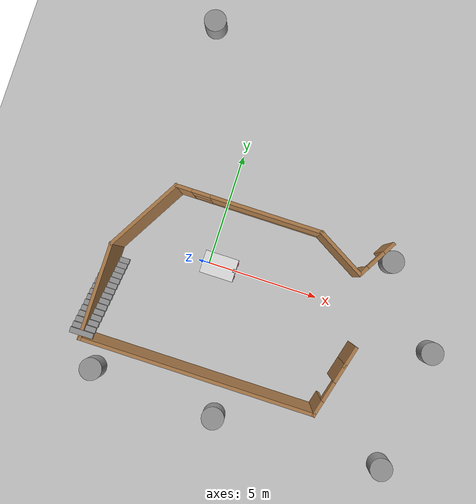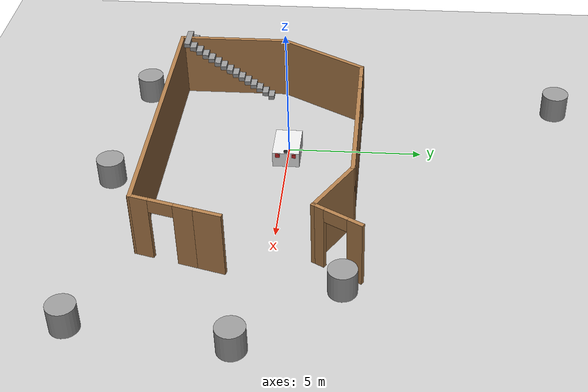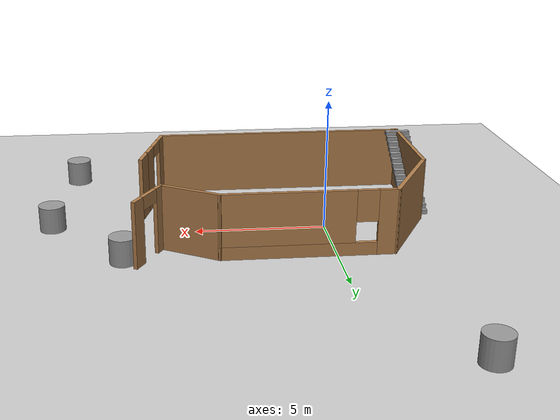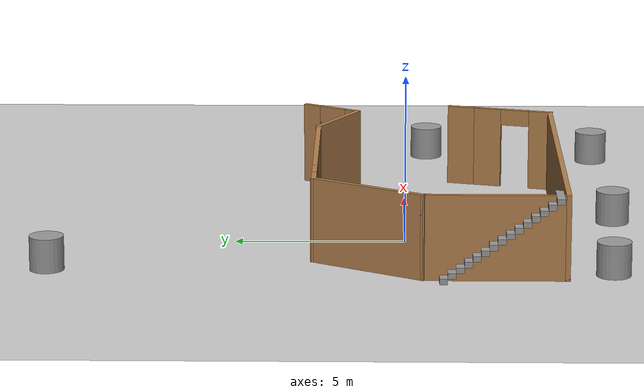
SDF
<sdf version="1.7">
 <world name="default">
  <light name="sun" type="directional">
   <pose>0 0 10 0 -0 0</pose>
   <diffuse>0.8 0.8 0.8 1</diffuse>
   <specular>0.2 0.2 0.2 1</specular>
   <attenuation>
    <range>1000</range>
    <constant>0.9</constant>
    <linear>0.01</linear>
    <quadratic>0.001</quadratic>
   </attenuation>
   <direction>-0.5 0.1 -0.9</direction>
   <spot><inner_angle>0</inner_angle><outer_angle>0</outer_angle><falloff>0</falloff></spot>
  </light>
  <model name="ground_plane">
   <static>1</static>
   <link name="link">
    <collision name="collision">
     <geometry><plane><normal>0 0 1</normal><size>100 100</size></plane></geometry>
     <surface><friction><ode><mu>100</mu><mu2>50</mu2></ode></friction></surface>
    </collision>
    <visual name="visual">
     <cast_shadows>0</cast_shadows>
     <geometry><plane><normal>0 0 1</normal><size>100 100</size></plane></geometry>
     <material>
      <script><uri>file://media/materials/scripts/gazebo.material</uri><name>Gazebo/Grey</name></script>
     </material>
    </visual>
   </link>
  </model>
  <gravity>0 0 -9.8</gravity>
  <magnetic_field>6e-06 2.3e-05 -4.2e-05</magnetic_field>
  <atmosphere type="adiabatic"/>
  <physics type="ode">
   <max_step_size>0.001</max_step_size>
   <real_time_factor>1</real_time_factor>
   <real_time_update_rate>1000</real_time_update_rate>
  </physics>
  <scene><ambient>0.4 0.4 0.4 1</ambient><background>0.7 0.7 0.7 1</background><shadows>1</shadows></scene>
  <audio><device>default</device></audio>
  <spherical_coordinates>
   <surface_model>EARTH_WGS84</surface_model>
   <latitude_deg>0</latitude_deg>
   <longitude_deg>0</longitude_deg>
   <elevation>0</elevation>
   <heading_deg>0</heading_deg>
  </spherical_coordinates>
  <model name="my_bot">
   <link name="base_link">
    <inertial>
     <pose>0.070173 0 0.029826 0 -0 0</pose>
     <mass>75.1</mass>
     <inertia>
      <ixx>0.903352</ixx>
      <ixy>0</ixy>
      <ixz>0.826016</ixz>
      <iyy>2.4414</iyy>
      <iyz>0</iyz>
      <izz>1.94739</izz>
     </inertia>
    </inertial>
    <collision name="base_link_fixed_joint_lump__chassis_collision">
     <pose>0.035 0 0.052885 0 -0 0</pose>
     <geometry><box><size>1.5 1 0.6</size></box></geometry>
    </collision>
    <collision name="base_link_fixed_joint_lump__caster_wheel_left_collision_1">
     <pose>0.55 0 -0.3 0 -0 0</pose>
     <geometry><sphere><radius>0.1</radius></sphere></geometry>
     <surface><friction><ode><mu>0.01</mu><mu2>0.01</mu2></ode></friction></surface>
    </collision>
    <collision name="base_link_fixed_joint_lump__laser_frame_collision_2">
     <pose>0.7 0 0.38 0 -0 0</pose>
     <geometry><cylinder><length>0.04</length><radius>0.035</radius></cylinder></geometry>
    </collision>
    <visual name="base_link_fixed_joint_lump__chassis_visual">
     <pose>0.035 0 0.052885 0 -0 0</pose>
     <geometry><box><size>1.5 1 0.6</size></box></geometry>
     <material>
      <script><name>Gazebo/white</name><uri>file://media/materials/scripts/gazebo.material</uri></script>
     </material>
    </visual>
    <visual name="base_link_fixed_joint_lump__camera_link_visual_1">
     <pose>0.8 0.3 0.25 0 -0 0</pose>
     <geometry><box><size>0.05 0.15 0.15</size></box></geometry>
     <material>
      <script><name>Gazebo/Red</name><uri>file://media/materials/scripts/gazebo.material</uri></script>
     </material>
    </visual>
    <visual name="base_link_fixed_joint_lump__camera_link2_visual_2">
     <pose>0.8 -0.3 0.25 0 -0 0</pose>
     <geometry><box><size>0.05 0.15 0.15</size></box></geometry>
     <material>
      <script><name>Gazebo/Red</name><uri>file://media/materials/scripts/gazebo.material</uri></script>
     </material>
    </visual>
    <visual name="base_link_fixed_joint_lump__caster_wheel_left_visual_3">
     <pose>0.55 0 -0.3 0 -0 0</pose>
     <geometry><sphere><radius>0.1</radius></sphere></geometry>
     <material>
      <script><name>Gazebo/Black</name><uri>file://media/materials/scripts/gazebo.material</uri></script>
     </material>
    </visual>
    <visual name="base_link_fixed_joint_lump__laser_frame_visual_4">
     <pose>0.7 0 0.38 0 -0 0</pose>
     <geometry><cylinder><length>0.04</length><radius>0.075</radius></cylinder></geometry>
     <material>
      <script><name>Gazebo/Black</name><uri>file://media/materials/scripts/gazebo.material</uri></script>
     </material>
    </visual>
    <sensor name="camera" type="depth">
     <visualize>1</visualize>
     <update_rate>10</update_rate>
     <camera>
      <horizontal_fov>1.089</horizontal_fov>
      <image><format>B8G8R8</format><width>640</width><height>480</height></image>
      <clip><near>0.1</near><far>100</far></clip>
     </camera>
     <plugin name="camera_controller" filename="libgazebo_ros_camera.so">
      <frame_name>camera_link_optical</frame_name>
      <min_depth>0.1</min_depth>
      <max_depth>100.0</max_depth>
     </plugin>
     <pose>0.8 0.3 0.25 0 -0 0</pose>
    </sensor>
    <sensor name="camera2" type="depth">
     <visualize>1</visualize>
     <update_rate>10</update_rate>
     <camera>
      <horizontal_fov>1.089</horizontal_fov>
      <image><format>B8G8R8</format><width>640</width><height>480</height></image>
      <clip><near>0.1</near><far>100</far></clip>
     </camera>
     <plugin name="camera_controller2" filename="libgazebo_ros_camera.so">
      <frame_name>camera_link_optical2</frame_name>
      <min_depth>0.1</min_depth>
      <max_depth>100.0</max_depth>
     </plugin>
     <pose>0.8 -0.3 0.25 0 -0 0</pose>
    </sensor>
    <sensor name="laser" type="ray">
     <visualize>1</visualize>
     <update_rate>10</update_rate>
     <ray>
      <scan>
       <horizontal>
        <samples>360</samples>
        <min_angle>-3.14</min_angle>
        <max_angle>3.14</max_angle>
        <resolution>1</resolution>
       </horizontal>
       <vertical><samples>1</samples><min_angle>0</min_angle><max_angle>0</max_angle></vertical>
      </scan>
      <range><min>0.3</min><max>12</max></range>
     </ray>
     <plugin name="laser_controller" filename="libgazebo_ros_ray_sensor.so">
      <ros><argument>~/out:=scan</argument></ros>
      <output_type>sensor_msgs/LaserScan</output_type>
      <frame_name>laser_frame</frame_name>
     </plugin>
     <pose>0.7 0 0.38 0 -0 0</pose>
    </sensor>
   </link>
   <joint name="left_wheel_joint" type="revolute">
    <pose relative_to="base_link">-0.5 0.4 -0.25 -1.5708 0 0</pose>
    <parent>base_link</parent>
    <child>left_wheel</child>
    <axis>
     <xyz>0 0 1</xyz>
     <limit><lower>-1e+16</lower><upper>1e+16</upper></limit>
     <dynamics><spring_reference>0</spring_reference><spring_stiffness>0</spring_stiffness></dynamics>
    </axis>
   </joint>
   <link name="left_wheel">
    <pose relative_to="left_wheel_joint">0 0 0 0 -0 0</pose>
    <inertial>
     <mass>10</mass>
     <inertia><ixx>0.170333</ixx><ixy>0</ixy><ixz>0</ixz><iyy>0.170333</iyy><iyz>0</iyz><izz>0.3125</izz></inertia>
    </inertial>
    <collision name="left_wheel_collision"><geometry><sphere><radius>0.15</radius></sphere></geometry></collision>
    <visual name="left_wheel_visual">
     <geometry><cylinder><length>0.13</length><radius>0.15</radius></cylinder></geometry>
     <material>
      <script><name>Gazebo/Black</name><uri>file://media/materials/scripts/gazebo.material</uri></script>
     </material>
    </visual>
   </link>
   <joint name="right_wheel_joint" type="revolute">
    <pose relative_to="base_link">-0.5 -0.4 -0.25 1.5708 -0 0</pose>
    <parent>base_link</parent>
    <child>right_wheel</child>
    <axis>
     <xyz>0 0 -1</xyz>
     <limit><lower>-1e+16</lower><upper>1e+16</upper></limit>
     <dynamics><spring_reference>0</spring_reference><spring_stiffness>0</spring_stiffness></dynamics>
    </axis>
   </joint>
   <link name="right_wheel">
    <pose relative_to="right_wheel_joint">0 0 0 0 -0 0</pose>
    <inertial>
     <mass>10</mass>
     <inertia><ixx>0.170333</ixx><ixy>0</ixy><ixz>0</ixz><iyy>0.170333</iyy><iyz>0</iyz><izz>0.3125</izz></inertia>
    </inertial>
    <collision name="right_wheel_collision">
     <geometry><sphere><radius>0.15</radius></sphere></geometry>
    </collision>
    <visual name="right_wheel_visual">
     <geometry><cylinder><length>0.13</length><radius>0.15</radius></cylinder></geometry>
     <material>
      <script><name>Gazebo/Black</name><uri>file://media/materials/scripts/gazebo.material</uri></script>
     </material>
    </visual>
   </link>
   <static>0</static>
   <plugin name="diff_drive" filename="libgazebo_ros_diff_drive.so">
    <left_joint>left_wheel_joint</left_joint>
    <right_joint>right_wheel_joint</right_joint>
    <wheel_separation>0.8</wheel_separation>
    <wheel_diameter>0.5</wheel_diameter>
    <max_wheel_torque>150</max_wheel_torque>
    <max_wheel_accleration>4.0</max_wheel_accleration>
    <odometry_frame>odom</odometry_frame>
    <robot_base_frame>base_link</robot_base_frame>
    <publish_odom>1</publish_odom>
    <publish_odom_tf>1</publish_odom_tf>
    <publish_wheel_tf>1</publish_wheel_tf>
   </plugin>
   <pose>0.480045 0.000809 0.399989 0 -2.1e-05 -0.000292</pose>
  </model>
  <model name="RTSB">
   <pose>1.45558 -0.752283 0 0 -0 0</pose>
   <link name="Stairs_0">
    <visual name="Stairs_0_Visual_0">
     <pose>-5.34703 -0.315053 0.083333 0 -0 0</pose>
     <geometry><box><size>1 0.233333 0.166667</size></box></geometry>
     <material>
      <script><uri>file://media/materials/scripts/gazebo.material</uri><name>Gazebo/Grey</name></script>
      <ambient>1 1 1 1</ambient>
     </material>
     <meta><layer>0</layer></meta>
    </visual>
    <collision name="Stairs_0_Collision_0">
     <geometry><box><size>1 0.233333 0.166667</size></box></geometry>
     <pose>-5.34703 -0.315053 0.083333 0 -0 0</pose>
    </collision>
    <visual name="Stairs_0_Visual_1">
     <pose>-5.34703 -0.548386 0.25 0 -0 0</pose>
     <geometry><box><size>1 0.233333 0.166667</size></box></geometry>
     <material>
      <script><uri>file://media/materials/scripts/gazebo.material</uri><name>Gazebo/Grey</name></script>
      <ambient>1 1 1 1</ambient>
     </material>
     <meta><layer>0</layer></meta>
    </visual>
    <collision name="Stairs_0_Collision_1">
     <geometry><box><size>1 0.233333 0.166667</size></box></geometry>
     <pose>-5.34703 -0.548386 0.25 0 -0 0</pose>
    </collision>
    <visual name="Stairs_0_Visual_2">
     <pose>-5.34703 -0.781719 0.416667 0 -0 0</pose>
     <geometry><box><size>1 0.233333 0.166667</size></box></geometry>
     <material>
      <script><uri>file://media/materials/scripts/gazebo.material</uri><name>Gazebo/Grey</name></script>
      <ambient>1 1 1 1</ambient>
     </material>
     <meta><layer>0</layer></meta>
    </visual>
    <collision name="Stairs_0_Collision_2">
     <geometry><box><size>1 0.233333 0.166667</size></box></geometry>
     <pose>-5.34703 -0.781719 0.416667 0 -0 0</pose>
    </collision>
    <visual name="Stairs_0_Visual_3">
     <pose>-5.34703 -1.01505 0.583333 0 -0 0</pose>
     <geometry><box><size>1 0.233333 0.166667</size></box></geometry>
     <material>
      <script><uri>file://media/materials/scripts/gazebo.material</uri><name>Gazebo/Grey</name></script>
      <ambient>1 1 1 1</ambient>
     </material>
     <meta><layer>0</layer></meta>
    </visual>
    <collision name="Stairs_0_Collision_3">
     <geometry><box><size>1 0.233333 0.166667</size></box></geometry>
     <pose>-5.34703 -1.01505 0.583333 0 -0 0</pose>
    </collision>
    <visual name="Stairs_0_Visual_4">
     <pose>-5.34703 -1.24839 0.75 0 -0 0</pose>
     <geometry><box><size>1 0.233333 0.166667</size></box></geometry>
     <material>
      <script><uri>file://media/materials/scripts/gazebo.material</uri><name>Gazebo/Grey</name></script>
      <ambient>1 1 1 1</ambient>
     </material>
     <meta><layer>0</layer></meta>
    </visual>
    <collision name="Stairs_0_Collision_4">
     <geometry><box><size>1 0.233333 0.166667</size></box></geometry>
     <pose>-5.34703 -1.24839 0.75 0 -0 0</pose>
    </collision>
    <visual name="Stairs_0_Visual_5">
     <pose>-5.34703 -1.48172 0.916667 0 -0 0</pose>
     <geometry><box><size>1 0.233333 0.166667</size></box></geometry>
     <material>
      <script><uri>file://media/materials/scripts/gazebo.material</uri><name>Gazebo/Grey</name></script>
      <ambient>1 1 1 1</ambient>
     </material>
     <meta><layer>0</layer></meta>
    </visual>
    <collision name="Stairs_0_Collision_5">
     <geometry><box><size>1 0.233333 0.166667</size></box></geometry>
     <pose>-5.34703 -1.48172 0.916667 0 -0 0</pose>
    </collision>
    <visual name="Stairs_0_Visual_6">
     <pose>-5.34703 -1.71505 1.08333 0 -0 0</pose>
     <geometry><box><size>1 0.233333 0.166667</size></box></geometry>
     <material>
      <script><uri>file://media/materials/scripts/gazebo.material</uri><name>Gazebo/Grey</name></script>
      <ambient>1 1 1 1</ambient>
     </material>
     <meta><layer>0</layer></meta>
    </visual>
    <collision name="Stairs_0_Collision_6">
     <geometry><box><size>1 0.233333 0.166667</size></box></geometry>
     <pose>-5.34703 -1.71505 1.08333 0 -0 0</pose>
    </collision>
    <visual name="Stairs_0_Visual_7">
     <pose>-5.34703 -1.94839 1.25 0 -0 0</pose>
     <geometry><box><size>1 0.233333 0.166667</size></box></geometry>
     <material>
      <script><uri>file://media/materials/scripts/gazebo.material</uri><name>Gazebo/Grey</name></script>
      <ambient>1 1 1 1</ambient>
     </material>
     <meta><layer>0</layer></meta>
    </visual>
    <collision name="Stairs_0_Collision_7">
     <geometry><box><size>1 0.233333 0.166667</size></box></geometry>
     <pose>-5.34703 -1.94839 1.25 0 -0 0</pose>
    </collision>
    <visual name="Stairs_0_Visual_8">
     <pose>-5.34703 -2.18172 1.41667 0 -0 0</pose>
     <geometry><box><size>1 0.233333 0.166667</size></box></geometry>
     <material>
      <script><uri>file://media/materials/scripts/gazebo.material</uri><name>Gazebo/Grey</name></script>
      <ambient>1 1 1 1</ambient>
     </material>
     <meta><layer>0</layer></meta>
    </visual>
    <collision name="Stairs_0_Collision_8">
     <geometry><box><size>1 0.233333 0.166667</size></box></geometry>
     <pose>-5.34703 -2.18172 1.41667 0 -0 0</pose>
    </collision>
    <visual name="Stairs_0_Visual_9">
     <pose>-5.34703 -2.41505 1.58333 0 -0 0</pose>
     <geometry><box><size>1 0.233333 0.166667</size></box></geometry>
     <material>
      <script><uri>file://media/materials/scripts/gazebo.material</uri><name>Gazebo/Grey</name></script>
      <ambient>1 1 1 1</ambient>
     </material>
     <meta><layer>0</layer></meta>
    </visual>
    <collision name="Stairs_0_Collision_9">
     <geometry><box><size>1 0.233333 0.166667</size></box></geometry>
     <pose>-5.34703 -2.41505 1.58333 0 -0 0</pose>
    </collision>
    <visual name="Stairs_0_Visual_10">
     <pose>-5.34703 -2.64839 1.75 0 -0 0</pose>
     <geometry><box><size>1 0.233333 0.166667</size></box></geometry>
     <material>
      <script><uri>file://media/materials/scripts/gazebo.material</uri><name>Gazebo/Grey</name></script>
      <ambient>1 1 1 1</ambient>
     </material>
     <meta><layer>0</layer></meta>
    </visual>
    <collision name="Stairs_0_Collision_10">
     <geometry><box><size>1 0.233333 0.166667</size></box></geometry>
     <pose>-5.34703 -2.64839 1.75 0 -0 0</pose>
    </collision>
    <visual name="Stairs_0_Visual_11">
     <pose>-5.34703 -2.88172 1.91667 0 -0 0</pose>
     <geometry><box><size>1 0.233333 0.166667</size></box></geometry>
     <material>
      <script><uri>file://media/materials/scripts/gazebo.material</uri><name>Gazebo/Grey</name></script>
      <ambient>1 1 1 1</ambient>
     </material>
     <meta><layer>0</layer></meta>
    </visual>
    <collision name="Stairs_0_Collision_11">
     <geometry><box><size>1 0.233333 0.166667</size></box></geometry>
     <pose>-5.34703 -2.88172 1.91667 0 -0 0</pose>
    </collision>
    <visual name="Stairs_0_Visual_12">
     <pose>-5.34703 -3.11505 2.08333 0 -0 0</pose>
     <geometry><box><size>1 0.233333 0.166667</size></box></geometry>
     <material>
      <script><uri>file://media/materials/scripts/gazebo.material</uri><name>Gazebo/Grey</name></script>
      <ambient>1 1 1 1</ambient>
     </material>
     <meta><layer>0</layer></meta>
    </visual>
    <collision name="Stairs_0_Collision_12">
     <geometry><box><size>1 0.233333 0.166667</size></box></geometry>
     <pose>-5.34703 -3.11505 2.08333 0 -0 0</pose>
    </collision>
    <visual name="Stairs_0_Visual_13">
     <pose>-5.34703 -3.34839 2.25 0 -0 0</pose>
     <geometry><box><size>1 0.233333 0.166667</size></box></geometry>
     <material>
      <script><uri>file://media/materials/scripts/gazebo.material</uri><name>Gazebo/Grey</name></script>
      <ambient>1 1 1 1</ambient>
     </material>
     <meta><layer>0</layer></meta>
    </visual>
    <collision name="Stairs_0_Collision_13">
     <geometry><box><size>1 0.233333 0.166667</size></box></geometry>
     <pose>-5.34703 -3.34839 2.25 0 -0 0</pose>
    </collision>
    <visual name="Stairs_0_Visual_14">
     <pose>-5.34703 -3.58172 2.41667 0 -0 0</pose>
     <geometry><box><size>1 0.233333 0.166667</size></box></geometry>
     <material>
      <script><uri>file://media/materials/scripts/gazebo.material</uri><name>Gazebo/Grey</name></script>
      <ambient>1 1 1 1</ambient>
     </material>
     <meta><layer>0</layer></meta>
    </visual>
    <collision name="Stairs_0_Collision_14">
     <geometry><box><size>1 0.233333 0.166667</size></box></geometry>
     <pose>-5.34703 -3.58172 2.41667 0 -0 0</pose>
    </collision>
   </link>
   <link name="Wall_0">
    <collision name="Wall_0_Collision">
     <geometry><box><size>10.25 0.15 2.5</size></box></geometry>
     <pose>0 0 1.25 0 -0 0</pose>
    </collision>
    <visual name="Wall_0_Visual">
     <pose>0 0 1.25 0 -0 0</pose>
     <geometry><box><size>10.25 0.15 2.5</size></box></geometry>
     <material>
      <script><uri>file://media/materials/scripts/gazebo.material</uri><name>Gazebo/Wood</name></script>
      <ambient>1 1 1 1</ambient>
     </material>
     <meta><layer>0</layer></meta>
    </visual>
    <pose>-0.315579 -3.82772 0 0 -0 0</pose>
   </link>
   <link name="Wall_1">
    <pose>5.03853 -2.69275 0 0 -0 1.309</pose>
    <visual name="Wall_1_Visual_0">
     <pose>-0.88268 0 1.25 0 -0 0</pose>
     <geometry><box><size>0.73464 0.15 2.5</size></box></geometry>
     <material>
      <script><uri>file://media/materials/scripts/gazebo.material</uri><name>Gazebo/Wood</name></script>
      <ambient>1 1 1 1</ambient>
     </material>
     <meta><layer>0</layer></meta>
    </visual>
    <collision name="Wall_1_Collision_0">
     <geometry><box><size>0.73464 0.15 2.5</size></box></geometry>
     <pose>-0.88268 0 1.25 0 -0 0</pose>
    </collision>
    <visual name="Wall_1_Visual_1">
     <pose>0.81732 0 1.25 0 -0 0</pose>
     <geometry><box><size>0.86536 0.15 2.5</size></box></geometry>
     <material>
      <script><uri>file://media/materials/scripts/gazebo.material</uri><name>Gazebo/Wood</name></script>
      <ambient>1 1 1 1</ambient>
     </material>
     <meta><layer>0</layer></meta>
    </visual>
    <collision name="Wall_1_Collision_1">
     <geometry><box><size>0.86536 0.15 2.5</size></box></geometry>
     <pose>0.81732 0 1.25 0 -0 0</pose>
    </collision>
    <visual name="Wall_1_Visual_2">
     <pose>-0.06536 0 2.25 0 -0 0</pose>
     <geometry><box><size>0.9 0.15 0.5</size></box></geometry>
     <material>
      <script><uri>file://media/materials/scripts/gazebo.material</uri><name>Gazebo/Wood</name></script>
      <ambient>1 1 1 1</ambient>
     </material>
     <meta><layer>0</layer></meta>
    </visual>
    <collision name="Wall_1_Collision_2">
     <geometry><box><size>0.9 0.15 0.5</size></box></geometry>
     <pose>-0.06536 0 2.25 0 -0 0</pose>
    </collision>
   </link>
   <link name="Wall_2">
    <collision name="Wall_2_Collision">
     <geometry><box><size>1 0.15 2.5</size></box></geometry>
     <pose>0 0 1.25 0 -0 0</pose>
    </collision>
    <visual name="Wall_2_Visual">
     <pose>0 0 1.25 0 -0 0</pose>
     <geometry><box><size>1 0.15 2.5</size></box></geometry>
     <material>
      <script><uri>file://media/materials/scripts/gazebo.material</uri><name>Gazebo/Wood</name></script>
      <ambient>1 1 1 1</ambient>
     </material>
     <meta><layer>0</layer></meta>
    </visual>
    <pose>5.45264 -1.14727 0 0 -0 1.309</pose>
   </link>
   <link name="Wall_4">
    <collision name="Wall_4_Collision">
     <geometry><box><size>4.25 0.15 2.5</size></box></geometry>
     <pose>0 0 1.25 0 -0 0</pose>
    </collision>
    <visual name="Wall_4_Visual">
     <pose>0 0 1.25 0 -0 0</pose>
     <geometry><box><size>4.25 0.15 2.5</size></box></geometry>
     <material>
      <script><uri>file://media/materials/scripts/gazebo.material</uri><name>Gazebo/Wood</name></script>
      <ambient>1 1 1 1</ambient>
     </material>
     <meta><layer>0</layer></meta>
    </visual>
    <pose>-5.36558 -1.77772 0 0 -0 1.5708</pose>
   </link>
   <link name="Wall_5">
    <collision name="Wall_5_Collision">
     <geometry><box><size>3.75 0.15 2.5</size></box></geometry>
     <pose>0 0 1.25 0 -0 0</pose>
    </collision>
    <visual name="Wall_5_Visual">
     <pose>0 0 1.25 0 -0 0</pose>
     <geometry><box><size>3.75 0.15 2.5</size></box></geometry>
     <material>
      <script><uri>file://media/materials/scripts/gazebo.material</uri><name>Gazebo/Wood</name></script>
      <ambient>1 1 1 1</ambient>
     </material>
     <meta><layer>0</layer></meta>
    </visual>
    <pose>-4.46558 1.83113 0 0 -0 1.0472</pose>
   </link>
   <link name="Wall_6">
    <pose>-0.390579 3.38997 0 0 -0 0</pose>
    <visual name="Wall_6_Visual_0">
     <pose>-2.86692 0 1.25 0 -0 0</pose>
     <geometry><box><size>0.766153 0.15 2.5</size></box></geometry>
     <material>
      <script><uri>file://media/materials/scripts/gazebo.material</uri><name>Gazebo/Wood</name></script>
      <ambient>1 1 1 1</ambient>
     </material>
     <meta><layer>0</layer></meta>
    </visual>
    <collision name="Wall_6_Collision_0">
     <geometry><box><size>0.766153 0.15 2.5</size></box></geometry>
     <pose>-2.86692 0 1.25 0 -0 0</pose>
    </collision>
    <visual name="Wall_6_Visual_1">
     <pose>0.383076 0 0.25 0 -0 0</pose>
     <geometry><box><size>5.73385 0.15 0.5</size></box></geometry>
     <material>
      <script><uri>file://media/materials/scripts/gazebo.material</uri><name>Gazebo/Wood</name></script>
      <ambient>1 1 1 1</ambient>
     </material>
     <meta><layer>0</layer></meta>
    </visual>
    <collision name="Wall_6_Collision_1">
     <geometry><box><size>5.73385 0.15 0.5</size></box></geometry>
     <pose>0.383076 0 0.25 0 -0 0</pose>
    </collision>
    <visual name="Wall_6_Visual_2">
     <pose>0.783076 0 1.5 0 -0 0</pose>
     <geometry><box><size>4.93385 0.15 2</size></box></geometry>
     <material>
      <script><uri>file://media/materials/scripts/gazebo.material</uri><name>Gazebo/Wood</name></script>
      <ambient>1 1 1 1</ambient>
     </material>
     <meta><layer>0</layer></meta>
    </visual>
    <collision name="Wall_6_Collision_2">
     <geometry><box><size>4.93385 0.15 2</size></box></geometry>
     <pose>0.783076 0 1.5 0 -0 0</pose>
    </collision>
    <visual name="Wall_6_Visual_3">
     <pose>-2.08385 0 1.9 0 -0 0</pose>
     <geometry><box><size>0.8 0.15 1.2</size></box></geometry>
     <material>
      <script><uri>file://media/materials/scripts/gazebo.material</uri><name>Gazebo/Wood</name></script>
      <ambient>1 1 1 1</ambient>
     </material>
     <meta><layer>0</layer></meta>
    </visual>
    <collision name="Wall_6_Collision_3">
     <geometry><box><size>0.8 0.15 1.2</size></box></geometry>
     <pose>-2.08385 0 1.9 0 -0 0</pose>
    </collision>
   </link>
   <link name="Wall_7">
    <collision name="Wall_7_Collision">
     <geometry><box><size>2.5 0.15 2.5</size></box></geometry>
     <pose>0 0 1.25 0 -0 0</pose>
    </collision>
    <visual name="Wall_7_Visual">
     <pose>0 0 1.25 0 -0 0</pose>
     <geometry><box><size>2.5 0.15 2.5</size></box></geometry>
     <material>
      <script><uri>file://media/materials/scripts/gazebo.material</uri><name>Gazebo/Wood</name></script>
      <ambient>1 1 1 1</ambient>
     </material>
     <meta><layer>0</layer></meta>
    </visual>
    <pose>3.802 2.80247 0 0 -0 -0.523599</pose>
   </link>
   <link name="Wall_8">
    <pose>5.28208 3.01605 0 0 -0 1.0472</pose>
    <visual name="Wall_8_Visual_0">
     <pose>-0.743903 0 1.25 0 -0 0</pose>
     <geometry><box><size>0.512195 0.15 2.5</size></box></geometry>
     <material>
      <script><uri>file://media/materials/scripts/gazebo.material</uri><name>Gazebo/Wood</name></script>
      <ambient>1 1 1 1</ambient>
     </material>
     <meta><layer>0</layer></meta>
    </visual>
    <collision name="Wall_8_Collision_0">
     <geometry><box><size>0.512195 0.15 2.5</size></box></geometry>
     <pose>-0.743903 0 1.25 0 -0 0</pose>
    </collision>
    <visual name="Wall_8_Visual_1">
     <pose>0.706097 0 1.25 0 -0 0</pose>
     <geometry><box><size>0.587805 0.15 2.5</size></box></geometry>
     <material>
      <script><uri>file://media/materials/scripts/gazebo.material</uri><name>Gazebo/Wood</name></script>
      <ambient>1 1 1 1</ambient>
     </material>
     <meta><layer>0</layer></meta>
    </visual>
    <collision name="Wall_8_Collision_1">
     <geometry><box><size>0.587805 0.15 2.5</size></box></geometry>
     <pose>0.706097 0 1.25 0 -0 0</pose>
    </collision>
    <visual name="Wall_8_Visual_2">
     <pose>-0.037805 0 2.25 0 -0 0</pose>
     <geometry><box><size>0.9 0.15 0.5</size></box></geometry>
     <material>
      <script><uri>file://media/materials/scripts/gazebo.material</uri><name>Gazebo/Wood</name></script>
      <ambient>1 1 1 1</ambient>
     </material>
     <meta><layer>0</layer></meta>
    </visual>
    <collision name="Wall_8_Collision_2">
     <geometry><box><size>0.9 0.15 0.5</size></box></geometry>
     <pose>-0.037805 0 2.25 0 -0 0</pose>
    </collision>
   </link>
   <static>1</static>
  </model>
  <model name="unit_cylinder">
   <pose>2.29433 -6.29602 0.499998 3e-06 -4e-06 0</pose>
   <link name="link">
    <inertial>
     <mass>1</mass>
     <inertia><ixx>0.145833</ixx><ixy>0</ixy><ixz>0</ixz><iyy>0.145833</iyy><iyz>0</iyz><izz>0.125</izz></inertia>
    </inertial>
    <collision name="collision">
     <geometry><cylinder><radius>0.5</radius><length>1</length></cylinder></geometry>
    </collision>
    <visual name="visual">
     <geometry><cylinder><radius>0.5</radius><length>1</length></cylinder></geometry>
     <material>
      <script><name>Gazebo/Grey</name><uri>file://media/materials/scripts/gazebo.material</uri></script>
     </material>
    </visual>
   </link>
  </model>
  <model name="unit_cylinder_0">
   <pose>9.83569 -6.13787 0.499992 -3e-06 -4e-06 -0</pose>
   <link name="link">
    <inertial>
     <mass>1</mass>
     <inertia><ixx>0.145833</ixx><ixy>0</ixy><ixz>0</ixz><iyy>0.145833</iyy><iyz>0</iyz><izz>0.125</izz></inertia>
    </inertial>
    <collision name="collision">
     <geometry><cylinder><radius>0.5</radius><length>1</length></cylinder></geometry>
    </collision>
    <visual name="visual">
     <geometry><cylinder><radius>0.5</radius><length>1</length></cylinder></geometry>
     <material>
      <script><name>Gazebo/Grey</name><uri>file://media/materials/scripts/gazebo.material</uri></script>
     </material>
    </visual>
   </link>
  </model>
  <model name="unit_cylinder_1">
   <pose>7.67251 2.49621 0.499993 -3e-06 -3e-06 0</pose>
   <link name="link">
    <inertial>
     <mass>1</mass>
     <inertia><ixx>0.145833</ixx><ixy>0</ixy><ixz>0</ixz><iyy>0.145833</iyy><iyz>0</iyz><izz>0.125</izz></inertia>
    </inertial>
    <collision name="collision">
     <geometry><cylinder><radius>0.5</radius><length>1</length></cylinder></geometry>
    </collision>
    <visual name="visual">
     <geometry><cylinder><radius>0.5</radius><length>1</length></cylinder></geometry>
     <material>
      <script><name>Gazebo/Grey</name><uri>file://media/materials/scripts/gazebo.material</uri></script>
     </material>
    </visual>
   </link>
  </model>
  <model name="unit_cylinder_2">
   <pose>10.4642 -0.761628 0.499997 3e-06 4e-06 -0</pose>
   <link name="link">
    <inertial>
     <mass>1</mass>
     <inertia><ixx>0.145833</ixx><ixy>0</ixy><ixz>0</ixz><iyy>0.145833</iyy><iyz>0</iyz><izz>0.125</izz></inertia>
    </inertial>
    <collision name="collision">
     <geometry><cylinder><radius>0.5</radius><length>1</length></cylinder></geometry>
    </collision>
    <visual name="visual">
     <geometry><cylinder><radius>0.5</radius><length>1</length></cylinder></geometry>
     <material>
      <script><name>Gazebo/Grey</name><uri>file://media/materials/scripts/gazebo.material</uri></script>
     </material>
    </visual>
   </link>
  </model>
  <model name="unit_cylinder_3">
   <pose>-3.00254 10.2583 0.499993 -3e-06 -4e-06 -0</pose>
   <link name="link">
    <inertial>
     <mass>1</mass>
     <inertia><ixx>0.145833</ixx><ixy>0</ixy><ixz>0</ixz><iyy>0.145833</iyy><iyz>0</iyz><izz>0.125</izz></inertia>
    </inertial>
    <collision name="collision">
     <geometry><cylinder><radius>0.5</radius><length>1</length></cylinder></geometry>
    </collision>
    <visual name="visual">
     <geometry><cylinder><radius>0.5</radius><length>1</length></cylinder></geometry>
     <material>
      <script><name>Gazebo/Grey</name><uri>file://media/materials/scripts/gazebo.material</uri></script>
     </material>
    </visual>
   </link>
  </model>
  <model name="unit_cylinder_4">
   <pose>-3.36198 -5.92385 0.499997 3e-06 4e-06 -0</pose>
   <link name="link">
    <inertial>
     <mass>1</mass>
     <inertia><ixx>0.145833</ixx><ixy>0</ixy><ixz>0</ixz><iyy>0.145833</iyy><iyz>0</iyz><izz>0.125</izz></inertia>
    </inertial>
    <collision name="collision">
     <geometry><cylinder><radius>0.5</radius><length>1</length></cylinder></geometry>
    </collision>
    <visual name="visual">
     <geometry><cylinder><radius>0.5</radius><length>1</length></cylinder></geometry>
     <material>
      <script><name>Gazebo/Grey</name><uri>file://media/materials/scripts/gazebo.material</uri></script>
     </material>
    </visual>
   </link>
  </model>
 </world>
</sdf>
